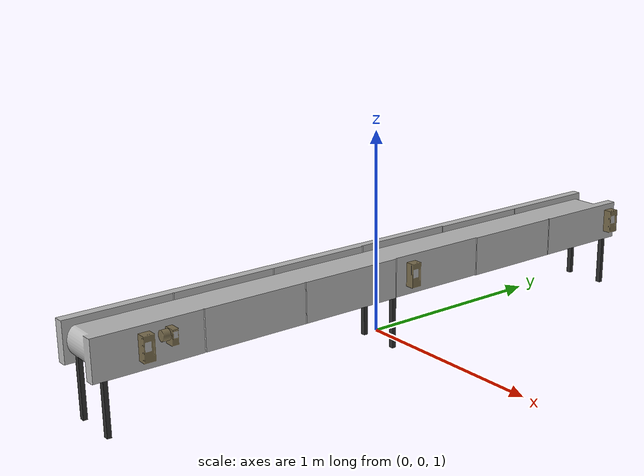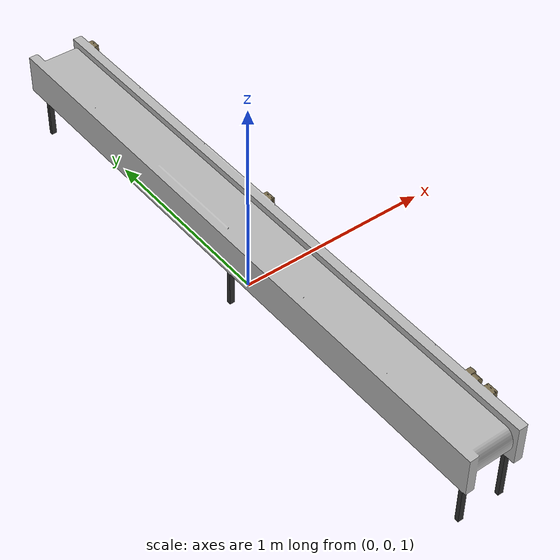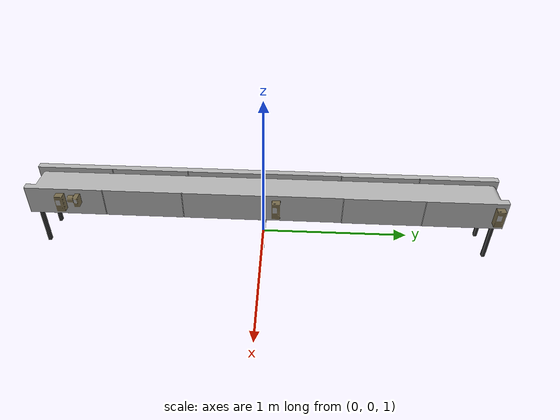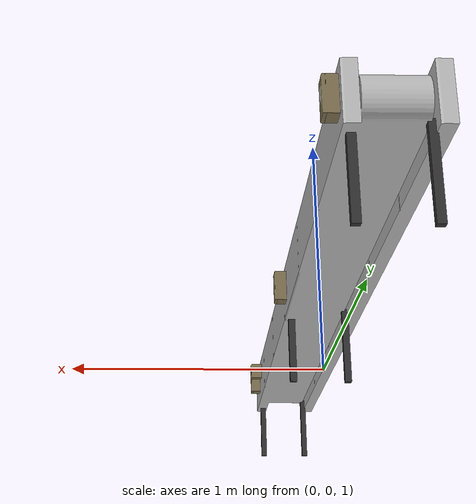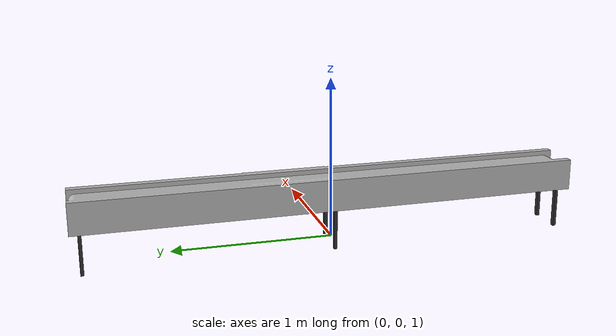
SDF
<?xml version="1.0" ?>
<sdf version="1.8">
  <model name="conveyor_belt">
    <static>true</static>

    <link name="link">
      <visual name="visual">
        <pose>0 0 0.95 0 0 0</pose>
        <geometry>
          <mesh>
            <scale>0.45 0.35 0.5</scale>
            <uri>model://conveyor_belt/meshes/conveyor.dae</uri>
          </mesh>
        </geometry>
      </visual>

      <collision name="collision">
        <pose>0 0 0.95 0 0 0</pose>
        <geometry>
          <box>
            <size>2.4 0.8 0.1</size>
          </box>
        </geometry>
        <surface>
          <friction>
            <ode>
              <mu>2.0</mu>
              <mu2>0.5</mu2>
              <fdir1>1 0 0</fdir1>
            </ode>
          </friction>
        </surface>
      </collision>
    </link>

    <plugin filename="gz-sim-track-controller-system"
            name="gz::sim::systems::TrackController">
      <link>link</link>
      <min_velocity>-1.0</min_velocity>
      <max_velocity>1.0</max_velocity>
    </plugin>
  </model>
</sdf>
